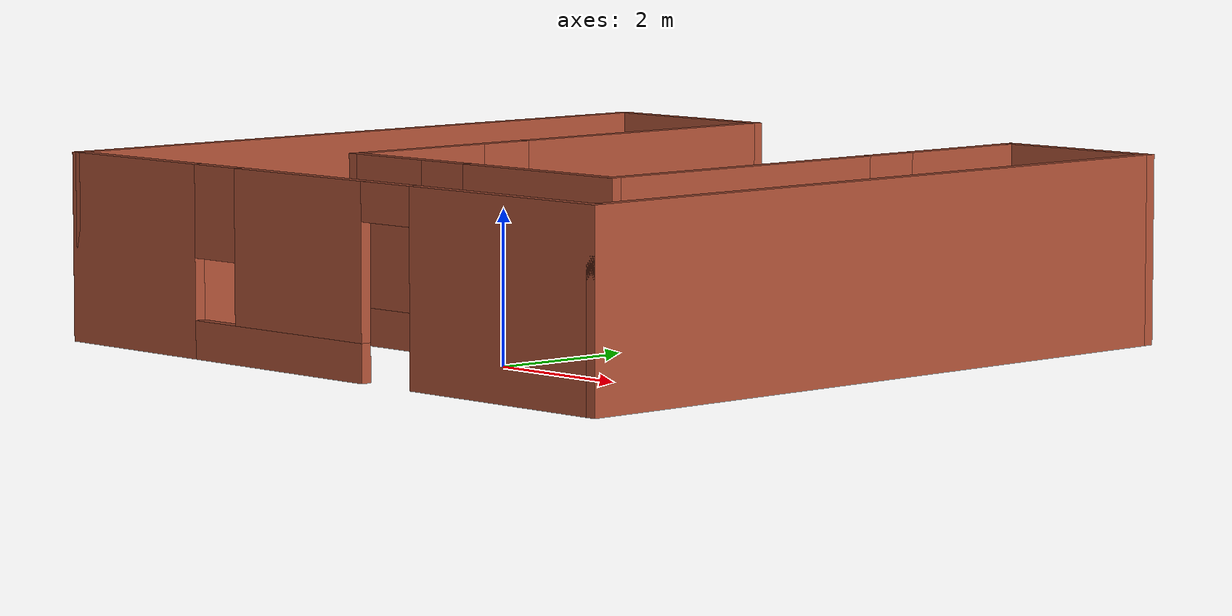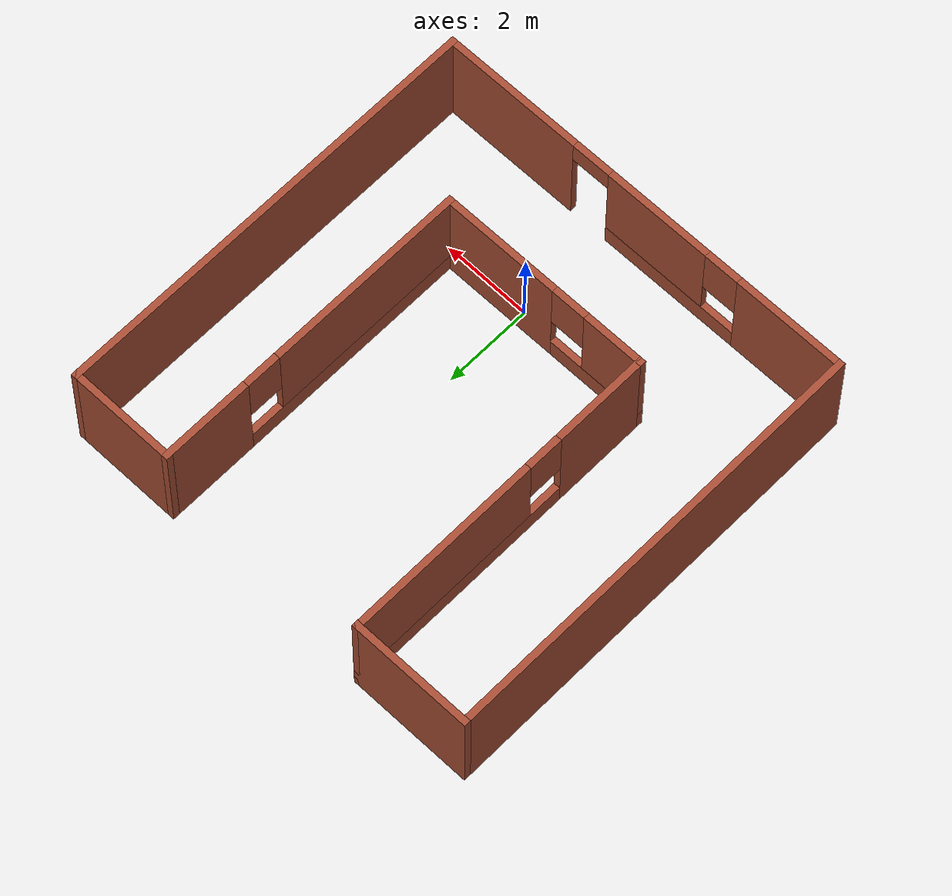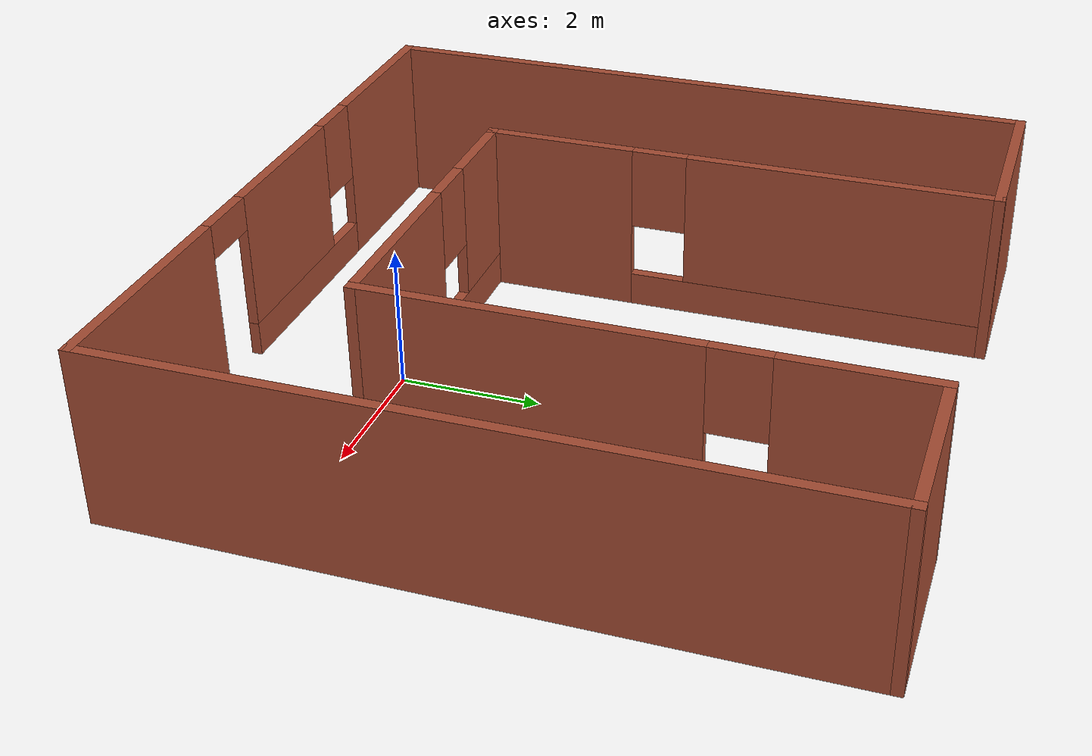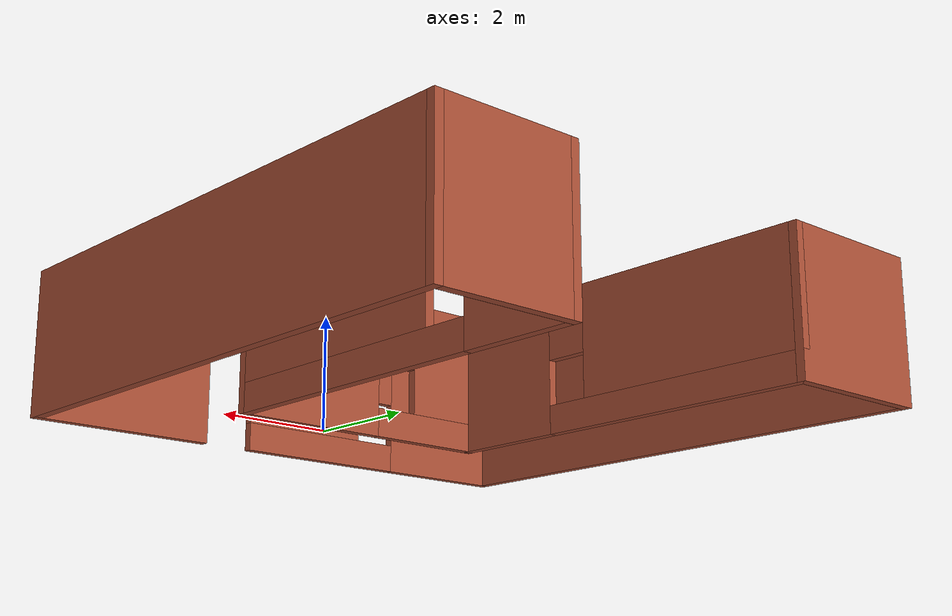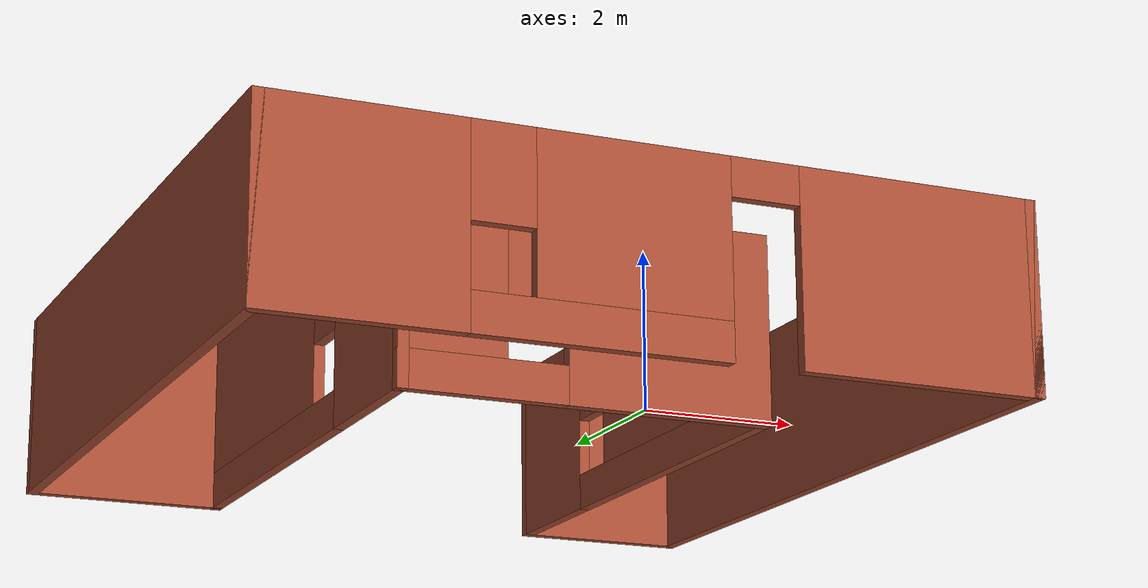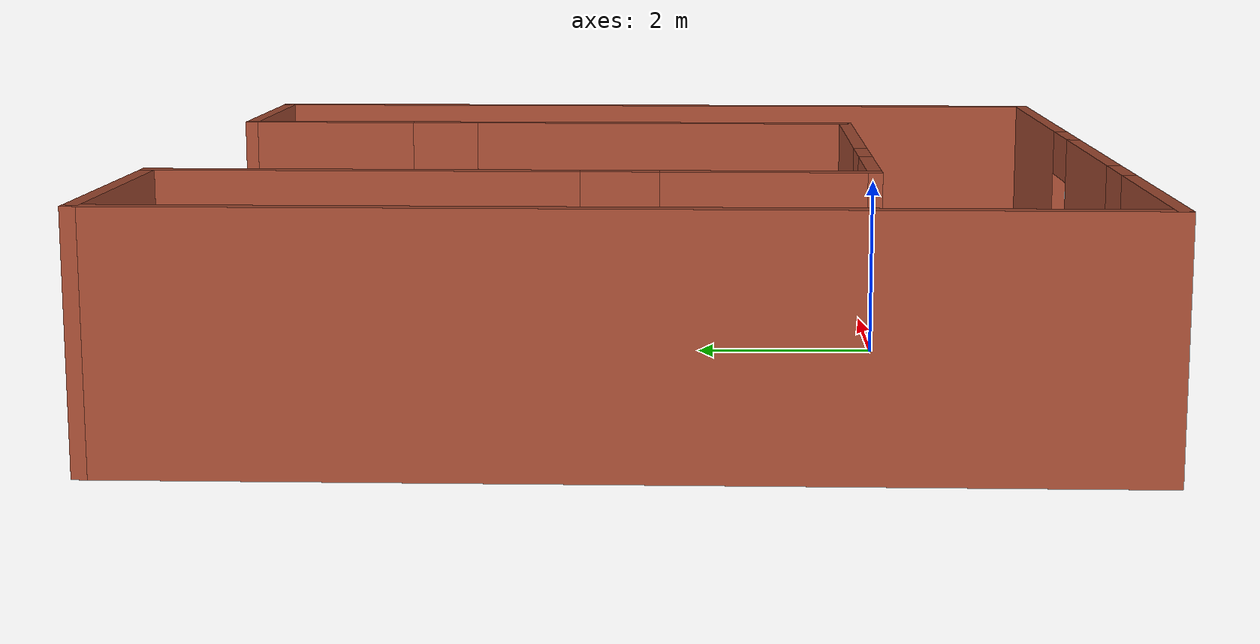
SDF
<?xml version='1.0'?>
<sdf version='1.6'>
  <model name='MyWorldTex'>
    <pose frame=''>-0.82663 2.65076 0 0 -0 0</pose>
    <link name='Wall_1'>
      <collision name='Wall_1_Collision'>
        <geometry>
          <box>
            <size>10 0.15 2.5</size>
          </box>
        </geometry>
        <pose frame=''>0 0 1.25 0 -0 0</pose>
      </collision>
      <visual name='Wall_1_Visual'>
        <pose frame=''>0 0 1.25 0 -0 0</pose>
        <geometry>
          <box>
            <size>10 0.15 2.5</size>
          </box>
        </geometry>
        <material>
          <script>
            <uri>file://media/materials/scripts/gazebo.material</uri>
            <name>Gazebo/Bricks</name>
          </script>
          <ambient>1 1 1 1</ambient>
        </material>
        <meta>
          <layer>0</layer>
        </meta>
      </visual>
      <pose frame=''>-4.925 0 0 0 0 -1.5708</pose>
    </link>
    <link name='Wall_2'>
      <pose frame=''>0 -4.925 0 0 -0 0</pose>
      <visual name='Wall_2_Visual_0'>
        <pose frame=''>-3.7197 0 1.25 0 -0 0</pose>
        <geometry>
          <box>
            <size>2.56059 0.15 2.5</size>
          </box>
        </geometry>
        <material>
          <script>
            <uri>file://media/materials/scripts/gazebo.material</uri>
            <name>Gazebo/Bricks</name>
          </script>
          <ambient>1 1 1 1</ambient>
        </material>
        <meta>
          <layer>0</layer>
        </meta>
      </visual>
      <collision name='Wall_2_Collision_0'>
        <geometry>
          <box>
            <size>2.56059 0.15 2.5</size>
          </box>
        </geometry>
        <pose frame=''>-3.7197 0 1.25 0 -0 0</pose>
      </collision>
      <visual name='Wall_2_Visual_1'>
        <pose frame=''>3.35999 0 1.25 0 -0 0</pose>
        <geometry>
          <box>
            <size>3.28002 0.15 2.5</size>
          </box>
        </geometry>
        <material>
          <script>
            <uri>file://media/materials/scripts/gazebo.material</uri>
            <name>Gazebo/Bricks</name>
          </script>
          <ambient>1 1 1 1</ambient>
        </material>
        <meta>
          <layer>0</layer>
        </meta>
      </visual>
      <collision name='Wall_2_Collision_1'>
        <geometry>
          <box>
            <size>3.28002 0.15 2.5</size>
          </box>
        </geometry>
        <pose frame=''>3.35999 0 1.25 0 -0 0</pose>
      </collision>
      <visual name='Wall_2_Visual_2'>
        <pose frame=''>-0.809715 0 0.25 0 -0 0</pose>
        <geometry>
          <box>
            <size>3.25939 0.15 0.5</size>
          </box>
        </geometry>
        <material>
          <script>
            <uri>file://media/materials/scripts/gazebo.material</uri>
            <name>Gazebo/Bricks</name>
          </script>
          <ambient>1 1 1 1</ambient>
        </material>
        <meta>
          <layer>0</layer>
        </meta>
      </visual>
      <collision name='Wall_2_Collision_2'>
        <geometry>
          <box>
            <size>3.25939 0.15 0.5</size>
          </box>
        </geometry>
        <pose frame=''>-0.809715 0 0.25 0 -0 0</pose>
      </collision>
      <visual name='Wall_2_Visual_3'>
        <pose frame=''>-0.409715 0 1.5 0 -0 0</pose>
        <geometry>
          <box>
            <size>2.45939 0.15 2</size>
          </box>
        </geometry>
        <material>
          <script>
            <uri>file://media/materials/scripts/gazebo.material</uri>
            <name>Gazebo/Bricks</name>
          </script>
          <ambient>1 1 1 1</ambient>
        </material>
        <meta>
          <layer>0</layer>
        </meta>
      </visual>
      <collision name='Wall_2_Collision_3'>
        <geometry>
          <box>
            <size>2.45939 0.15 2</size>
          </box>
        </geometry>
        <pose frame=''>-0.409715 0 1.5 0 -0 0</pose>
      </collision>
      <visual name='Wall_2_Visual_4'>
        <pose frame=''>-2.03941 0 1.9 0 -0 0</pose>
        <geometry>
          <box>
            <size>0.8 0.15 1.2</size>
          </box>
        </geometry>
        <material>
          <script>
            <uri>file://media/materials/scripts/gazebo.material</uri>
            <name>Gazebo/Bricks</name>
          </script>
          <ambient>1 1 1 1</ambient>
        </material>
        <meta>
          <layer>0</layer>
        </meta>
      </visual>
      <collision name='Wall_2_Collision_4'>
        <geometry>
          <box>
            <size>0.8 0.15 1.2</size>
          </box>
        </geometry>
        <pose frame=''>-2.03941 0 1.9 0 -0 0</pose>
      </collision>
      <visual name='Wall_2_Visual_5'>
        <pose frame=''>1.26998 0 2.25 0 -0 0</pose>
        <geometry>
          <box>
            <size>0.9 0.15 0.5</size>
          </box>
        </geometry>
        <material>
          <script>
            <uri>file://media/materials/scripts/gazebo.material</uri>
            <name>Gazebo/Bricks</name>
          </script>
          <ambient>1 1 1 1</ambient>
        </material>
        <meta>
          <layer>0</layer>
        </meta>
      </visual>
      <collision name='Wall_2_Collision_5'>
        <geometry>
          <box>
            <size>0.9 0.15 0.5</size>
          </box>
        </geometry>
        <pose frame=''>1.26998 0 2.25 0 -0 0</pose>
      </collision>
    </link>
    <link name='Wall_3'>
      <collision name='Wall_3_Collision'>
        <geometry>
          <box>
            <size>10 0.15 2.5</size>
          </box>
        </geometry>
        <pose frame=''>0 0 1.25 0 -0 0</pose>
      </collision>
      <visual name='Wall_3_Visual'>
        <pose frame=''>0 0 1.25 0 -0 0</pose>
        <geometry>
          <box>
            <size>10 0.15 2.5</size>
          </box>
        </geometry>
        <material>
          <script>
            <uri>file://media/materials/scripts/gazebo.material</uri>
            <name>Gazebo/Bricks</name>
          </script>
          <ambient>1 1 1 1</ambient>
        </material>
        <meta>
          <layer>0</layer>
        </meta>
      </visual>
      <pose frame=''>4.925 0 0 0 -0 1.5708</pose>
    </link>
    <link name='Wall_4'>
      <collision name='Wall_4_Collision'>
        <geometry>
          <box>
            <size>2.5 0.15 2.5</size>
          </box>
        </geometry>
        <pose frame=''>0 0 1.25 0 -0 0</pose>
      </collision>
      <visual name='Wall_4_Visual'>
        <pose frame=''>0 0 1.25 0 -0 0</pose>
        <geometry>
          <box>
            <size>2.5 0.15 2.5</size>
          </box>
        </geometry>
        <material>
          <script>
            <uri>file://media/materials/scripts/gazebo.material</uri>
            <name>Gazebo/Bricks</name>
          </script>
          <ambient>1 1 1 1</ambient>
        </material>
        <meta>
          <layer>0</layer>
        </meta>
      </visual>
      <pose frame=''>3.75 4.925 0 0 -0 3.14159</pose>
    </link>
    <link name='Wall_5'>
      <pose frame=''>2.575 1.25 0 0 0 -1.5708</pose>
      <visual name='Wall_5_Visual_0'>
        <pose frame=''>-2.70569 0 1.25 0 -0 0</pose>
        <geometry>
          <box>
            <size>2.08863 0.15 2.5</size>
          </box>
        </geometry>
        <material>
          <script>
            <uri>file://media/materials/scripts/gazebo.material</uri>
            <name>Gazebo/Bricks</name>
          </script>
          <ambient>1 1 1 1</ambient>
        </material>
        <meta>
          <layer>0</layer>
        </meta>
      </visual>
      <collision name='Wall_5_Collision_0'>
        <geometry>
          <box>
            <size>2.08863 0.15 2.5</size>
          </box>
        </geometry>
        <pose frame=''>-2.70569 0 1.25 0 -0 0</pose>
      </collision>
      <visual name='Wall_5_Visual_1'>
        <pose frame=''>1.04431 0 0.25 0 -0 0</pose>
        <geometry>
          <box>
            <size>5.41137 0.15 0.5</size>
          </box>
        </geometry>
        <material>
          <script>
            <uri>file://media/materials/scripts/gazebo.material</uri>
            <name>Gazebo/Bricks</name>
          </script>
          <ambient>1 1 1 1</ambient>
        </material>
        <meta>
          <layer>0</layer>
        </meta>
      </visual>
      <collision name='Wall_5_Collision_1'>
        <geometry>
          <box>
            <size>5.41137 0.15 0.5</size>
          </box>
        </geometry>
        <pose frame=''>1.04431 0 0.25 0 -0 0</pose>
      </collision>
      <visual name='Wall_5_Visual_2'>
        <pose frame=''>1.44431 0 1.5 0 -0 0</pose>
        <geometry>
          <box>
            <size>4.61137 0.15 2</size>
          </box>
        </geometry>
        <material>
          <script>
            <uri>file://media/materials/scripts/gazebo.material</uri>
            <name>Gazebo/Bricks</name>
          </script>
          <ambient>1 1 1 1</ambient>
        </material>
        <meta>
          <layer>0</layer>
        </meta>
      </visual>
      <collision name='Wall_5_Collision_2'>
        <geometry>
          <box>
            <size>4.61137 0.15 2</size>
          </box>
        </geometry>
        <pose frame=''>1.44431 0 1.5 0 -0 0</pose>
      </collision>
      <visual name='Wall_5_Visual_3'>
        <pose frame=''>-1.26137 0 1.9 0 -0 0</pose>
        <geometry>
          <box>
            <size>0.8 0.15 1.2</size>
          </box>
        </geometry>
        <material>
          <script>
            <uri>file://media/materials/scripts/gazebo.material</uri>
            <name>Gazebo/Bricks</name>
          </script>
          <ambient>1 1 1 1</ambient>
        </material>
        <meta>
          <layer>0</layer>
        </meta>
      </visual>
      <collision name='Wall_5_Collision_3'>
        <geometry>
          <box>
            <size>0.8 0.15 1.2</size>
          </box>
        </geometry>
        <pose frame=''>-1.26137 0 1.9 0 -0 0</pose>
      </collision>
    </link>
    <link name='Wall_6'>
      <pose frame=''>0.15 -2.425 0 0 -0 3.14159</pose>
      <visual name='Wall_6_Visual_0'>
        <pose frame=''>-1.11494 0 1.25 0 -0 0</pose>
        <geometry>
          <box>
            <size>2.77013 0.15 2.5</size>
          </box>
        </geometry>
        <material>
          <script>
            <uri>file://media/materials/scripts/gazebo.material</uri>
            <name>Gazebo/Bricks</name>
          </script>
          <ambient>1 1 1 1</ambient>
        </material>
        <meta>
          <layer>0</layer>
        </meta>
      </visual>
      <collision name='Wall_6_Collision_0'>
        <geometry>
          <box>
            <size>2.77013 0.15 2.5</size>
          </box>
        </geometry>
        <pose frame=''>-1.11494 0 1.25 0 -0 0</pose>
      </collision>
      <visual name='Wall_6_Visual_1'>
        <pose frame=''>1.38506 0 0.25 0 -0 0</pose>
        <geometry>
          <box>
            <size>2.22987 0.15 0.5</size>
          </box>
        </geometry>
        <material>
          <script>
            <uri>file://media/materials/scripts/gazebo.material</uri>
            <name>Gazebo/Bricks</name>
          </script>
          <ambient>1 1 1 1</ambient>
        </material>
        <meta>
          <layer>0</layer>
        </meta>
      </visual>
      <collision name='Wall_6_Collision_1'>
        <geometry>
          <box>
            <size>2.22987 0.15 0.5</size>
          </box>
        </geometry>
        <pose frame=''>1.38506 0 0.25 0 -0 0</pose>
      </collision>
      <visual name='Wall_6_Visual_2'>
        <pose frame=''>1.78506 0 1.5 0 -0 0</pose>
        <geometry>
          <box>
            <size>1.42987 0.15 2</size>
          </box>
        </geometry>
        <material>
          <script>
            <uri>file://media/materials/scripts/gazebo.material</uri>
            <name>Gazebo/Bricks</name>
          </script>
          <ambient>1 1 1 1</ambient>
        </material>
        <meta>
          <layer>0</layer>
        </meta>
      </visual>
      <collision name='Wall_6_Collision_2'>
        <geometry>
          <box>
            <size>1.42987 0.15 2</size>
          </box>
        </geometry>
        <pose frame=''>1.78506 0 1.5 0 -0 0</pose>
      </collision>
      <visual name='Wall_6_Visual_3'>
        <pose frame=''>0.670128 0 1.9 0 -0 0</pose>
        <geometry>
          <box>
            <size>0.8 0.15 1.2</size>
          </box>
        </geometry>
        <material>
          <script>
            <uri>file://media/materials/scripts/gazebo.material</uri>
            <name>Gazebo/Bricks</name>
          </script>
          <ambient>1 1 1 1</ambient>
        </material>
        <meta>
          <layer>0</layer>
        </meta>
      </visual>
      <collision name='Wall_6_Collision_3'>
        <geometry>
          <box>
            <size>0.8 0.15 1.2</size>
          </box>
        </geometry>
        <pose frame=''>0.670128 0 1.9 0 -0 0</pose>
      </collision>
    </link>
    <link name='Wall_7'>
      <pose frame=''>-2.275 1.25 0 0 -0 1.5708</pose>
      <visual name='Wall_7_Visual_0'>
        <pose frame=''>-2.63102 0 1.25 0 -0 0</pose>
        <geometry>
          <box>
            <size>2.23797 0.15 2.5</size>
          </box>
        </geometry>
        <material>
          <script>
            <uri>file://media/materials/scripts/gazebo.material</uri>
            <name>Gazebo/Bricks</name>
          </script>
          <ambient>1 1 1 1</ambient>
        </material>
        <meta>
          <layer>0</layer>
        </meta>
      </visual>
      <collision name='Wall_7_Collision_0'>
        <geometry>
          <box>
            <size>2.23797 0.15 2.5</size>
          </box>
        </geometry>
        <pose frame=''>-2.63102 0 1.25 0 -0 0</pose>
      </collision>
      <visual name='Wall_7_Visual_1'>
        <pose frame=''>1.11898 0 0.25 0 -0 0</pose>
        <geometry>
          <box>
            <size>5.26203 0.15 0.5</size>
          </box>
        </geometry>
        <material>
          <script>
            <uri>file://media/materials/scripts/gazebo.material</uri>
            <name>Gazebo/Bricks</name>
          </script>
          <ambient>1 1 1 1</ambient>
        </material>
        <meta>
          <layer>0</layer>
        </meta>
      </visual>
      <collision name='Wall_7_Collision_1'>
        <geometry>
          <box>
            <size>5.26203 0.15 0.5</size>
          </box>
        </geometry>
        <pose frame=''>1.11898 0 0.25 0 -0 0</pose>
      </collision>
      <visual name='Wall_7_Visual_2'>
        <pose frame=''>1.51899 0 1.5 0 -0 0</pose>
        <geometry>
          <box>
            <size>4.46203 0.15 2</size>
          </box>
        </geometry>
        <material>
          <script>
            <uri>file://media/materials/scripts/gazebo.material</uri>
            <name>Gazebo/Bricks</name>
          </script>
          <ambient>1 1 1 1</ambient>
        </material>
        <meta>
          <layer>0</layer>
        </meta>
      </visual>
      <collision name='Wall_7_Collision_2'>
        <geometry>
          <box>
            <size>4.46203 0.15 2</size>
          </box>
        </geometry>
        <pose frame=''>1.51899 0 1.5 0 -0 0</pose>
      </collision>
      <visual name='Wall_7_Visual_3'>
        <pose frame=''>-1.11203 0 1.9 0 -0 0</pose>
        <geometry>
          <box>
            <size>0.8 0.15 1.2</size>
          </box>
        </geometry>
        <material>
          <script>
            <uri>file://media/materials/scripts/gazebo.material</uri>
            <name>Gazebo/Bricks</name>
          </script>
          <ambient>1 1 1 1</ambient>
        </material>
        <meta>
          <layer>0</layer>
        </meta>
      </visual>
      <collision name='Wall_7_Collision_3'>
        <geometry>
          <box>
            <size>0.8 0.15 1.2</size>
          </box>
        </geometry>
        <pose frame=''>-1.11203 0 1.9 0 -0 0</pose>
      </collision>
    </link>
    <link name='Wall_8'>
      <collision name='Wall_8_Collision'>
        <geometry>
          <box>
            <size>2.8 0.15 2.5</size>
          </box>
        </geometry>
        <pose frame=''>0 0 1.25 0 -0 0</pose>
      </collision>
      <visual name='Wall_8_Visual'>
        <pose frame=''>0 0 1.25 0 -0 0</pose>
        <geometry>
          <box>
            <size>2.8 0.15 2.5</size>
          </box>
        </geometry>
        <material>
          <script>
            <uri>file://media/materials/scripts/gazebo.material</uri>
            <name>Gazebo/Bricks</name>
          </script>
          <ambient>1 1 1 1</ambient>
        </material>
        <meta>
          <layer>0</layer>
        </meta>
      </visual>
      <pose frame=''>-3.6 4.925 0 0 -0 3.14159</pose>
    </link>
    <static>1</static>
  </model>
</sdf>
